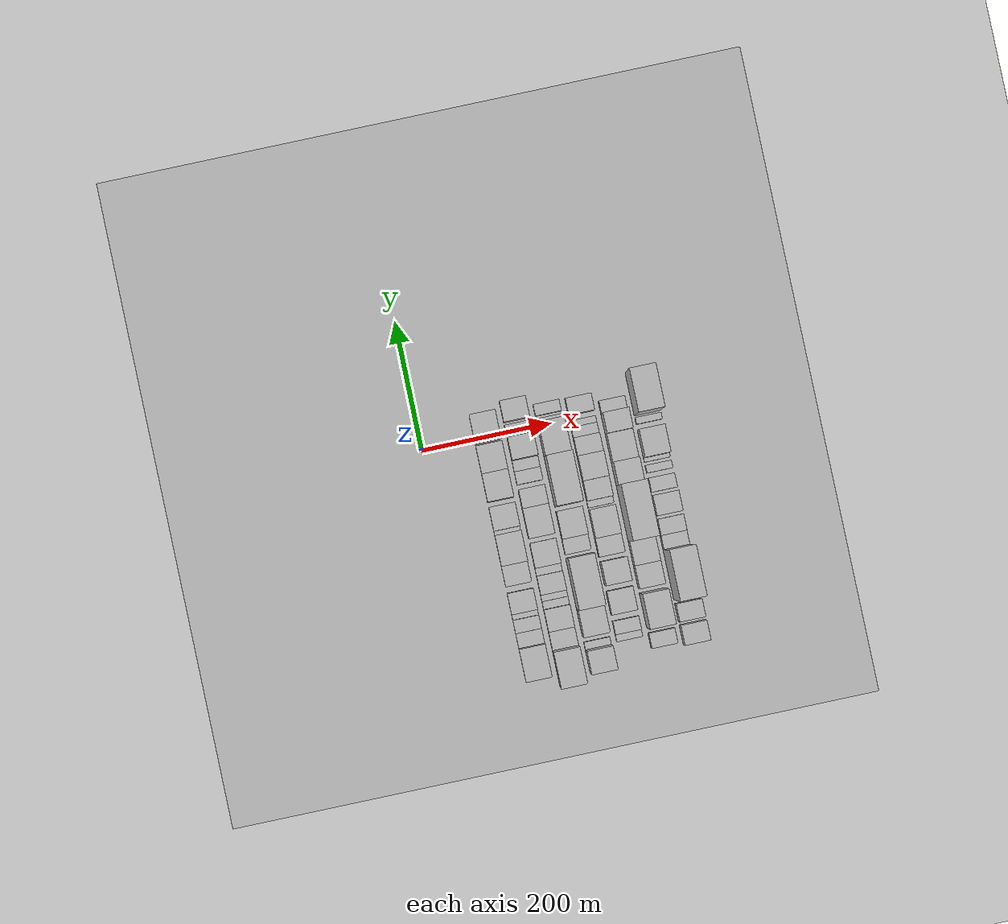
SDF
<sdf version="1.6">
 <world name="default">
  <include><name>ground_plane_1</name><uri>model://HANNAS_ground_plane</uri></include>
  <include>
   <name>ground_plane_2</name>
   <uri>model://HANNAS_ground_plane</uri>
   <pose>100 0 0  0 0 0</pose>
  </include>
  <model name="building_12">
   <static>1</static>
   <pose>100.0000 -347.9721 0 0.000000 0.000000 0.000000</pose>
   <link name="link">
    <pose>0 0 45.00 0 0 0</pose>
    <collision name="collision"><geometry><box><size>40.0000 50.4550 90.0000</size></box></geometry></collision>
    <visual name="visual">
     <cast_shadows>0</cast_shadows>
     <geometry><box><size>40.0000 50.4550 90.0000</size></box></geometry>
     <material>
      <script>
       <uri>model://HANNAS_wall/materials/scripts</uri>
       <uri>model://HANNAS_wall/materials/textures</uri>
       <name>vrc/HANNAS_wall</name>
      </script>
     </material>
    </visual>
   </link>
  </model>
  <model name="building_13">
   <static>1</static>
   <pose>100.0000 -311.3952 0 0.000000 0.000000 0.000000</pose>
   <link name="link">
    <pose>0 0 19.50 0 0 0</pose>
    <collision name="collision"><geometry><box><size>40.0000 22.6989 39.0000</size></box></geometry></collision>
    <visual name="visual">
     <cast_shadows>0</cast_shadows>
     <geometry><box><size>40.0000 22.6989 39.0000</size></box></geometry>
     <material>
      <script>
       <uri>model://HANNAS_wall/materials/scripts</uri>
       <uri>model://HANNAS_wall/materials/textures</uri>
       <name>vrc/HANNAS_wall</name>
      </script>
     </material>
    </visual>
   </link>
  </model>
  <model name="building_14">
   <static>1</static>
   <pose>100.0000 -289.8084 0 0.000000 0.000000 0.000000</pose>
   <link name="link">
    <pose>0 0 18.00 0 0 0</pose>
    <collision name="collision"><geometry><box><size>40.0000 20.4746 36.0000</size></box></geometry></collision>
    <visual name="visual">
     <cast_shadows>0</cast_shadows>
     <geometry><box><size>40.0000 20.4746 36.0000</size></box></geometry>
     <material>
      <script>
       <uri>model://HANNAS_wall/materials/scripts</uri>
       <uri>model://HANNAS_wall/materials/textures</uri>
       <name>vrc/HANNAS_wall</name>
      </script>
     </material>
    </visual>
   </link>
  </model>
  <model name="building_15">
   <static>1</static>
   <pose>100.0000 -275.0932 0 0.000000 0.000000 0.000000</pose>
   <link name="link">
    <pose>0 0 9.00 0 0 0</pose>
    <collision name="collision"><geometry><box><size>40.0000 8.9559 18.0000</size></box></geometry></collision>
    <visual name="visual">
     <cast_shadows>0</cast_shadows>
     <geometry><box><size>40.0000 8.9559 18.0000</size></box></geometry>
     <material>
      <script>
       <uri>model://HANNAS_wall/materials/scripts</uri>
       <uri>model://HANNAS_wall/materials/textures</uri>
       <name>vrc/HANNAS_wall</name>
      </script>
     </material>
    </visual>
   </link>
  </model>
  <model name="building_16">
   <static>1</static>
   <pose>100.0000 -254.2984 0 0.000000 0.000000 0.000000</pose>
   <link name="link">
    <pose>0 0 31.50 0 0 0</pose>
    <collision name="collision"><geometry><box><size>40.0000 32.6336 63.0000</size></box></geometry></collision>
    <visual name="visual">
     <cast_shadows>0</cast_shadows>
     <geometry><box><size>40.0000 32.6336 63.0000</size></box></geometry>
     <material>
      <script>
       <uri>model://HANNAS_wall/materials/scripts</uri>
       <uri>model://HANNAS_wall/materials/textures</uri>
       <name>vrc/HANNAS_wall</name>
      </script>
     </material>
    </visual>
   </link>
  </model>
  <model name="building_17">
   <static>1</static>
   <pose>100.0000 -211.9475 0 0.000000 0.000000 0.000000</pose>
   <link name="link">
    <pose>0 0 31.50 0 0 0</pose>
    <collision name="collision"><geometry><box><size>40.0000 32.0684 63.0000</size></box></geometry></collision>
    <visual name="visual">
     <cast_shadows>0</cast_shadows>
     <geometry><box><size>40.0000 32.0684 63.0000</size></box></geometry>
     <material>
      <script>
       <uri>model://HANNAS_wall/materials/scripts</uri>
       <uri>model://HANNAS_wall/materials/textures</uri>
       <name>vrc/HANNAS_wall</name>
      </script>
     </material>
    </visual>
   </link>
  </model>
  <model name="building_18">
   <static>1</static>
   <pose>100.0000 -172.4650 0 0.000000 0.000000 0.000000</pose>
   <link name="link">
    <pose>0 0 72.00 0 0 0</pose>
    <collision name="collision"><geometry><box><size>40.0000 46.8966 144.0000</size></box></geometry></collision>
    <visual name="visual">
     <cast_shadows>0</cast_shadows>
     <geometry><box><size>40.0000 46.8966 144.0000</size></box></geometry>
     <material>
      <script>
       <uri>model://HANNAS_wall/materials/scripts</uri>
       <uri>model://HANNAS_wall/materials/textures</uri>
       <name>vrc/HANNAS_wall</name>
      </script>
     </material>
    </visual>
   </link>
  </model>
  <model name="building_19">
   <static>1</static>
   <pose>100.0000 -145.7399 0 0.000000 0.000000 0.000000</pose>
   <link name="link">
    <pose>0 0 7.50 0 0 0</pose>
    <collision name="collision"><geometry><box><size>40.0000 6.5535 15.0000</size></box></geometry></collision>
    <visual name="visual">
     <cast_shadows>0</cast_shadows>
     <geometry><box><size>40.0000 6.5535 15.0000</size></box></geometry>
     <material>
      <script>
       <uri>model://HANNAS_wall/materials/scripts</uri>
       <uri>model://HANNAS_wall/materials/textures</uri>
       <name>vrc/HANNAS_wall</name>
      </script>
     </material>
    </visual>
   </link>
  </model>
  <model name="building_20">
   <static>1</static>
   <pose>100.0000 -124.3125 0 0.000000 0.000000 0.000000</pose>
   <link name="link">
    <pose>0 0 57.00 0 0 0</pose>
    <collision name="collision"><geometry><box><size>40.0000 36.3013 114.0000</size></box></geometry></collision>
    <visual name="visual">
     <cast_shadows>0</cast_shadows>
     <geometry><box><size>40.0000 36.3013 114.0000</size></box></geometry>
     <material>
      <script>
       <uri>model://HANNAS_wall/materials/scripts</uri>
       <uri>model://HANNAS_wall/materials/textures</uri>
       <name>vrc/HANNAS_wall</name>
      </script>
     </material>
    </visual>
   </link>
  </model>
  <model name="building_21">
   <static>1</static>
   <pose>100.0000 -76.8169 0 0.000000 0.000000 0.000000</pose>
   <link name="link">
    <pose>0 0 61.50 0 0 0</pose>
    <collision name="collision"><geometry><box><size>40.0000 42.6899 123.0000</size></box></geometry></collision>
    <visual name="visual">
     <cast_shadows>0</cast_shadows>
     <geometry><box><size>40.0000 42.6899 123.0000</size></box></geometry>
     <material>
      <script>
       <uri>model://HANNAS_wall/materials/scripts</uri>
       <uri>model://HANNAS_wall/materials/textures</uri>
       <name>vrc/HANNAS_wall</name>
      </script>
     </material>
    </visual>
   </link>
  </model>
  <model name="building_22">
   <static>1</static>
   <pose>100.0000 -34.0870 0 0.000000 0.000000 0.000000</pose>
   <link name="link">
    <pose>0 0 60.00 0 0 0</pose>
    <collision name="collision"><geometry><box><size>40.0000 42.7698 120.0000</size></box></geometry></collision>
    <visual name="visual">
     <cast_shadows>0</cast_shadows>
     <geometry><box><size>40.0000 42.7698 120.0000</size></box></geometry>
     <material>
      <script>
       <uri>model://HANNAS_wall/materials/scripts</uri>
       <uri>model://HANNAS_wall/materials/textures</uri>
       <name>vrc/HANNAS_wall</name>
      </script>
     </material>
    </visual>
   </link>
  </model>
  <model name="building_23">
   <static>1</static>
   <pose>100.0000 13.6109 0 0.000000 0.000000 0.000000</pose>
   <link name="link">
    <pose>0 0 43.50 0 0 0</pose>
    <collision name="collision"><geometry><box><size>40.0000 44.6261 87.0000</size></box></geometry></collision>
    <visual name="visual">
     <cast_shadows>0</cast_shadows>
     <geometry><box><size>40.0000 44.6261 87.0000</size></box></geometry>
     <material>
      <script>
       <uri>model://HANNAS_wall/materials/scripts</uri>
       <uri>model://HANNAS_wall/materials/textures</uri>
       <name>vrc/HANNAS_wall</name>
      </script>
     </material>
    </visual>
   </link>
  </model>
  <model name="building_58">
   <static>1</static>
   <pose>149.0000 -364.0391 0 0.000000 0.000000 0.000000</pose>
   <link name="link">
    <pose>0 0 72.00 0 0 0</pose>
    <collision name="collision"><geometry><box><size>40.0000 55.9074 144.0000</size></box></geometry></collision>
    <visual name="visual">
     <cast_shadows>0</cast_shadows>
     <geometry><box><size>40.0000 55.9074 144.0000</size></box></geometry>
     <material>
      <script>
       <uri>model://HANNAS_wall/materials/scripts</uri>
       <uri>model://HANNAS_wall/materials/textures</uri>
       <name>vrc/HANNAS_wall</name>
      </script>
     </material>
    </visual>
   </link>
  </model>
  <model name="building_59">
   <static>1</static>
   <pose>149.0000 -321.9731 0 0.000000 0.000000 0.000000</pose>
   <link name="link">
    <pose>0 0 25.50 0 0 0</pose>
    <collision name="collision"><geometry><box><size>40.0000 28.2246 51.0000</size></box></geometry></collision>
    <visual name="visual">
     <cast_shadows>0</cast_shadows>
     <geometry><box><size>40.0000 28.2246 51.0000</size></box></geometry>
     <material>
      <script>
       <uri>model://HANNAS_wall/materials/scripts</uri>
       <uri>model://HANNAS_wall/materials/textures</uri>
       <name>vrc/HANNAS_wall</name>
      </script>
     </material>
    </visual>
   </link>
  </model>
  <model name="building_60">
   <static>1</static>
   <pose>149.0000 -290.6808 0 0.000000 0.000000 0.000000</pose>
   <link name="link">
    <pose>0 0 30.00 0 0 0</pose>
    <collision name="collision"><geometry><box><size>40.0000 34.3600 60.0000</size></box></geometry></collision>
    <visual name="visual">
     <cast_shadows>0</cast_shadows>
     <geometry><box><size>40.0000 34.3600 60.0000</size></box></geometry>
     <material>
      <script>
       <uri>model://HANNAS_wall/materials/scripts</uri>
       <uri>model://HANNAS_wall/materials/textures</uri>
       <name>vrc/HANNAS_wall</name>
      </script>
     </material>
    </visual>
   </link>
  </model>
  <model name="building_61">
   <static>1</static>
   <pose>149.0000 -267.4533 0 0.000000 0.000000 0.000000</pose>
   <link name="link">
    <pose>0 0 13.50 0 0 0</pose>
    <collision name="collision"><geometry><box><size>40.0000 12.0950 27.0000</size></box></geometry></collision>
    <visual name="visual">
     <cast_shadows>0</cast_shadows>
     <geometry><box><size>40.0000 12.0950 27.0000</size></box></geometry>
     <material>
      <script>
       <uri>model://HANNAS_wall/materials/scripts</uri>
       <uri>model://HANNAS_wall/materials/textures</uri>
       <name>vrc/HANNAS_wall</name>
      </script>
     </material>
    </visual>
   </link>
  </model>
  <model name="building_62">
   <static>1</static>
   <pose>149.0000 -256.3342 0 0.000000 0.000000 0.000000</pose>
   <link name="link">
    <pose>0 0 10.50 0 0 0</pose>
    <collision name="collision"><geometry><box><size>40.0000 10.1433 21.0000</size></box></geometry></collision>
    <visual name="visual">
     <cast_shadows>0</cast_shadows>
     <geometry><box><size>40.0000 10.1433 21.0000</size></box></geometry>
     <material>
      <script>
       <uri>model://HANNAS_wall/materials/scripts</uri>
       <uri>model://HANNAS_wall/materials/textures</uri>
       <name>vrc/HANNAS_wall</name>
      </script>
     </material>
    </visual>
   </link>
  </model>
  <model name="building_63">
   <static>1</static>
   <pose>149.0000 -236.6102 0 0.000000 0.000000 0.000000</pose>
   <link name="link">
    <pose>0 0 25.50 0 0 0</pose>
    <collision name="collision"><geometry><box><size>40.0000 29.3045 51.0000</size></box></geometry></collision>
    <visual name="visual">
     <cast_shadows>0</cast_shadows>
     <geometry><box><size>40.0000 29.3045 51.0000</size></box></geometry>
     <material>
      <script>
       <uri>model://HANNAS_wall/materials/scripts</uri>
       <uri>model://HANNAS_wall/materials/textures</uri>
       <name>vrc/HANNAS_wall</name>
      </script>
     </material>
    </visual>
   </link>
  </model>
  <model name="building_64">
   <static>1</static>
   <pose>149.0000 -215.8485 0 0.000000 0.000000 0.000000</pose>
   <link name="link">
    <pose>0 0 13.50 0 0 0</pose>
    <collision name="collision"><geometry><box><size>40.0000 12.2190 27.0000</size></box></geometry></collision>
    <visual name="visual">
     <cast_shadows>0</cast_shadows>
     <geometry><box><size>40.0000 12.2190 27.0000</size></box></geometry>
     <material>
      <script>
       <uri>model://HANNAS_wall/materials/scripts</uri>
       <uri>model://HANNAS_wall/materials/textures</uri>
       <name>vrc/HANNAS_wall</name>
      </script>
     </material>
    </visual>
   </link>
  </model>
  <model name="building_65">
   <static>1</static>
   <pose>149.0000 -190.5972 0 0.000000 0.000000 0.000000</pose>
   <link name="link">
    <pose>0 0 36.00 0 0 0</pose>
    <collision name="collision"><geometry><box><size>40.0000 38.2836 72.0000</size></box></geometry></collision>
    <visual name="visual">
     <cast_shadows>0</cast_shadows>
     <geometry><box><size>40.0000 38.2836 72.0000</size></box></geometry>
     <material>
      <script>
       <uri>model://HANNAS_wall/materials/scripts</uri>
       <uri>model://HANNAS_wall/materials/textures</uri>
       <name>vrc/HANNAS_wall</name>
      </script>
     </material>
    </visual>
   </link>
  </model>
  <model name="building_66">
   <static>1</static>
   <pose>149.0000 -141.4421 0 0.000000 0.000000 0.000000</pose>
   <link name="link">
    <pose>0 0 45.00 0 0 0</pose>
    <collision name="collision"><geometry><box><size>40.0000 46.0265 90.0000</size></box></geometry></collision>
    <visual name="visual">
     <cast_shadows>0</cast_shadows>
     <geometry><box><size>40.0000 46.0265 90.0000</size></box></geometry>
     <material>
      <script>
       <uri>model://HANNAS_wall/materials/scripts</uri>
       <uri>model://HANNAS_wall/materials/textures</uri>
       <name>vrc/HANNAS_wall</name>
      </script>
     </material>
    </visual>
   </link>
  </model>
  <model name="building_67">
   <static>1</static>
   <pose>149.0000 -103.8983 0 0.000000 0.000000 0.000000</pose>
   <link name="link">
    <pose>0 0 46.50 0 0 0</pose>
    <collision name="collision"><geometry><box><size>40.0000 29.0612 93.0000</size></box></geometry></collision>
    <visual name="visual">
     <cast_shadows>0</cast_shadows>
     <geometry><box><size>40.0000 29.0612 93.0000</size></box></geometry>
     <material>
      <script>
       <uri>model://HANNAS_wall/materials/scripts</uri>
       <uri>model://HANNAS_wall/materials/textures</uri>
       <name>vrc/HANNAS_wall</name>
      </script>
     </material>
    </visual>
   </link>
  </model>
  <model name="building_68">
   <static>1</static>
   <pose>149.0000 -71.3239 0 0.000000 0.000000 0.000000</pose>
   <link name="link">
    <pose>0 0 18.00 0 0 0</pose>
    <collision name="collision"><geometry><box><size>40.0000 20.0875 36.0000</size></box></geometry></collision>
    <visual name="visual">
     <cast_shadows>0</cast_shadows>
     <geometry><box><size>40.0000 20.0875 36.0000</size></box></geometry>
     <material>
      <script>
       <uri>model://HANNAS_wall/materials/scripts</uri>
       <uri>model://HANNAS_wall/materials/textures</uri>
       <name>vrc/HANNAS_wall</name>
      </script>
     </material>
    </visual>
   </link>
  </model>
  <model name="building_69">
   <static>1</static>
   <pose>149.0000 -52.8301 0 0.000000 0.000000 0.000000</pose>
   <link name="link">
    <pose>0 0 15.00 0 0 0</pose>
    <collision name="collision"><geometry><box><size>40.0000 16.9000 30.0000</size></box></geometry></collision>
    <visual name="visual">
     <cast_shadows>0</cast_shadows>
     <geometry><box><size>40.0000 16.9000 30.0000</size></box></geometry>
     <material>
      <script>
       <uri>model://HANNAS_wall/materials/scripts</uri>
       <uri>model://HANNAS_wall/materials/textures</uri>
       <name>vrc/HANNAS_wall</name>
      </script>
     </material>
    </visual>
   </link>
  </model>
  <model name="building_70">
   <static>1</static>
   <pose>149.0000 -26.7910 0 0.000000 0.000000 0.000000</pose>
   <link name="link">
    <pose>0 0 49.50 0 0 0</pose>
    <collision name="collision"><geometry><box><size>40.0000 35.1782 99.0000</size></box></geometry></collision>
    <visual name="visual">
     <cast_shadows>0</cast_shadows>
     <geometry><box><size>40.0000 35.1782 99.0000</size></box></geometry>
     <material>
      <script>
       <uri>model://HANNAS_wall/materials/scripts</uri>
       <uri>model://HANNAS_wall/materials/textures</uri>
       <name>vrc/HANNAS_wall</name>
      </script>
     </material>
    </visual>
   </link>
  </model>
  <model name="building_71">
   <static>1</static>
   <pose>149.0000 2.3673 0 0.000000 0.000000 0.000000</pose>
   <link name="link">
    <pose>0 0 16.50 0 0 0</pose>
    <collision name="collision"><geometry><box><size>40.0000 17.1384 33.0000</size></box></geometry></collision>
    <visual name="visual">
     <cast_shadows>0</cast_shadows>
     <geometry><box><size>40.0000 17.1384 33.0000</size></box></geometry>
     <material>
      <script>
       <uri>model://HANNAS_wall/materials/scripts</uri>
       <uri>model://HANNAS_wall/materials/textures</uri>
       <name>vrc/HANNAS_wall</name>
      </script>
     </material>
    </visual>
   </link>
  </model>
  <model name="building_72">
   <static>1</static>
   <pose>149.0000 31.3032 0 0.000000 0.000000 0.000000</pose>
   <link name="link">
    <pose>0 0 28.50 0 0 0</pose>
    <collision name="collision"><geometry><box><size>40.0000 32.7333 57.0000</size></box></geometry></collision>
    <visual name="visual">
     <cast_shadows>0</cast_shadows>
     <geometry><box><size>40.0000 32.7333 57.0000</size></box></geometry>
     <material>
      <script>
       <uri>model://HANNAS_wall/materials/scripts</uri>
       <uri>model://HANNAS_wall/materials/textures</uri>
       <name>vrc/HANNAS_wall</name>
      </script>
     </material>
    </visual>
   </link>
  </model>
  <model name="building_109">
   <static>1</static>
   <pose>198.0000 -363.7732 0 0.000000 0.000000 0.000000</pose>
   <link name="link">
    <pose>0 0 58.50 0 0 0</pose>
    <collision name="collision"><geometry><box><size>40.0000 35.7981 117.0000</size></box></geometry></collision>
    <visual name="visual">
     <cast_shadows>0</cast_shadows>
     <geometry><box><size>40.0000 35.7981 117.0000</size></box></geometry>
     <material>
      <script>
       <uri>model://HANNAS_wall/materials/scripts</uri>
       <uri>model://HANNAS_wall/materials/textures</uri>
       <name>vrc/HANNAS_wall</name>
      </script>
     </material>
    </visual>
   </link>
  </model>
  <model name="building_110">
   <static>1</static>
   <pose>198.0000 -340.1006 0 0.000000 0.000000 0.000000</pose>
   <link name="link">
    <pose>0 0 13.50 0 0 0</pose>
    <collision name="collision"><geometry><box><size>40.0000 11.5471 27.0000</size></box></geometry></collision>
    <visual name="visual">
     <cast_shadows>0</cast_shadows>
     <geometry><box><size>40.0000 11.5471 27.0000</size></box></geometry>
     <material>
      <script>
       <uri>model://HANNAS_wall/materials/scripts</uri>
       <uri>model://HANNAS_wall/materials/textures</uri>
       <name>vrc/HANNAS_wall</name>
      </script>
     </material>
    </visual>
   </link>
  </model>
  <model name="building_111">
   <static>1</static>
   <pose>198.0000 -303.9084 0 0.000000 0.000000 0.000000</pose>
   <link name="link">
    <pose>0 0 60.00 0 0 0</pose>
    <collision name="collision"><geometry><box><size>40.0000 42.8373 120.0000</size></box></geometry></collision>
    <visual name="visual">
     <cast_shadows>0</cast_shadows>
     <geometry><box><size>40.0000 42.8373 120.0000</size></box></geometry>
     <material>
      <script>
       <uri>model://HANNAS_wall/materials/scripts</uri>
       <uri>model://HANNAS_wall/materials/textures</uri>
       <name>vrc/HANNAS_wall</name>
      </script>
     </material>
    </visual>
   </link>
  </model>
  <model name="building_112">
   <static>1</static>
   <pose>198.0000 -243.5126 0 0.000000 0.000000 0.000000</pose>
   <link name="link">
    <pose>0 0 103.50 0 0 0</pose>
    <collision name="collision"><geometry><box><size>40.0000 77.9543 207.0000</size></box></geometry></collision>
    <visual name="visual">
     <cast_shadows>0</cast_shadows>
     <geometry><box><size>40.0000 77.9543 207.0000</size></box></geometry>
     <material>
      <script>
       <uri>model://HANNAS_wall/materials/scripts</uri>
       <uri>model://HANNAS_wall/materials/textures</uri>
       <name>vrc/HANNAS_wall</name>
      </script>
     </material>
    </visual>
   </link>
  </model>
  <model name="building_113">
   <static>1</static>
   <pose>198.0000 -187.6084 0 0.000000 0.000000 0.000000</pose>
   <link name="link">
    <pose>0 0 21.00 0 0 0</pose>
    <collision name="collision"><geometry><box><size>40.0000 23.8540 42.0000</size></box></geometry></collision>
    <visual name="visual">
     <cast_shadows>0</cast_shadows>
     <geometry><box><size>40.0000 23.8540 42.0000</size></box></geometry>
     <material>
      <script>
       <uri>model://HANNAS_wall/materials/scripts</uri>
       <uri>model://HANNAS_wall/materials/textures</uri>
       <name>vrc/HANNAS_wall</name>
      </script>
     </material>
    </visual>
   </link>
  </model>
  <model name="building_114">
   <static>1</static>
   <pose>198.0000 -154.2900 0 0.000000 0.000000 0.000000</pose>
   <link name="link">
    <pose>0 0 36.00 0 0 0</pose>
    <collision name="collision"><geometry><box><size>40.0000 42.7830 72.0000</size></box></geometry></collision>
    <visual name="visual">
     <cast_shadows>0</cast_shadows>
     <geometry><box><size>40.0000 42.7830 72.0000</size></box></geometry>
     <material>
      <script>
       <uri>model://HANNAS_wall/materials/scripts</uri>
       <uri>model://HANNAS_wall/materials/textures</uri>
       <name>vrc/HANNAS_wall</name>
      </script>
     </material>
    </visual>
   </link>
  </model>
  <model name="building_115">
   <static>1</static>
   <pose>198.0000 -87.7830 0 0.000000 0.000000 0.000000</pose>
   <link name="link">
    <pose>0 0 100.50 0 0 0</pose>
    <collision name="collision"><geometry><box><size>40.0000 76.2309 201.0000</size></box></geometry></collision>
    <visual name="visual">
     <cast_shadows>0</cast_shadows>
     <geometry><box><size>40.0000 76.2309 201.0000</size></box></geometry>
     <material>
      <script>
       <uri>model://HANNAS_wall/materials/scripts</uri>
       <uri>model://HANNAS_wall/materials/textures</uri>
       <name>vrc/HANNAS_wall</name>
      </script>
     </material>
    </visual>
   </link>
  </model>
  <model name="building_116">
   <static>1</static>
   <pose>198.0000 -23.4473 0 0.000000 0.000000 0.000000</pose>
   <link name="link">
    <pose>0 0 73.50 0 0 0</pose>
    <collision name="collision"><geometry><box><size>40.0000 52.4405 147.0000</size></box></geometry></collision>
    <visual name="visual">
     <cast_shadows>0</cast_shadows>
     <geometry><box><size>40.0000 52.4405 147.0000</size></box></geometry>
     <material>
      <script>
       <uri>model://HANNAS_wall/materials/scripts</uri>
       <uri>model://HANNAS_wall/materials/textures</uri>
       <name>vrc/HANNAS_wall</name>
      </script>
     </material>
    </visual>
   </link>
  </model>
  <model name="building_117">
   <static>1</static>
   <pose>198.0000 6.7192 0 0.000000 0.000000 0.000000</pose>
   <link name="link">
    <pose>0 0 9.00 0 0 0</pose>
    <collision name="collision"><geometry><box><size>40.0000 7.8926 18.0000</size></box></geometry></collision>
    <visual name="visual">
     <cast_shadows>0</cast_shadows>
     <geometry><box><size>40.0000 7.8926 18.0000</size></box></geometry>
     <material>
      <script>
       <uri>model://HANNAS_wall/materials/scripts</uri>
       <uri>model://HANNAS_wall/materials/textures</uri>
       <name>vrc/HANNAS_wall</name>
      </script>
     </material>
    </visual>
   </link>
  </model>
  <model name="building_118">
   <static>1</static>
   <pose>198.0000 23.5668 0 0.000000 0.000000 0.000000</pose>
   <link name="link">
    <pose>0 0 15.00 0 0 0</pose>
    <collision name="collision"><geometry><box><size>40.0000 17.8024 30.0000</size></box></geometry></collision>
    <visual name="visual">
     <cast_shadows>0</cast_shadows>
     <geometry><box><size>40.0000 17.8024 30.0000</size></box></geometry>
     <material>
      <script>
       <uri>model://HANNAS_wall/materials/scripts</uri>
       <uri>model://HANNAS_wall/materials/textures</uri>
       <name>vrc/HANNAS_wall</name>
      </script>
     </material>
    </visual>
   </link>
  </model>
  <model name="building_157">
   <static>1</static>
   <pose>247.0000 -338.6360 0 0.000000 0.000000 0.000000</pose>
   <link name="link">
    <pose>0 0 12.00 0 0 0</pose>
    <collision name="collision"><geometry><box><size>40.0000 11.1416 24.0000</size></box></geometry></collision>
    <visual name="visual">
     <cast_shadows>0</cast_shadows>
     <geometry><box><size>40.0000 11.1416 24.0000</size></box></geometry>
     <material>
      <script>
       <uri>model://HANNAS_wall/materials/scripts</uri>
       <uri>model://HANNAS_wall/materials/textures</uri>
       <name>vrc/HANNAS_wall</name>
      </script>
     </material>
    </visual>
   </link>
  </model>
  <model name="building_158">
   <static>1</static>
   <pose>247.0000 -322.7401 0 0.000000 0.000000 0.000000</pose>
   <link name="link">
    <pose>0 0 18.00 0 0 0</pose>
    <collision name="collision"><geometry><box><size>40.0000 20.6501 36.0000</size></box></geometry></collision>
    <visual name="visual">
     <cast_shadows>0</cast_shadows>
     <geometry><box><size>40.0000 20.6501 36.0000</size></box></geometry>
     <material>
      <script>
       <uri>model://HANNAS_wall/materials/scripts</uri>
       <uri>model://HANNAS_wall/materials/textures</uri>
       <name>vrc/HANNAS_wall</name>
      </script>
     </material>
    </visual>
   </link>
  </model>
  <model name="building_159">
   <static>1</static>
   <pose>247.0000 -284.2731 0 0.000000 0.000000 0.000000</pose>
   <link name="link">
    <pose>0 0 31.50 0 0 0</pose>
    <collision name="collision"><geometry><box><size>40.0000 36.2840 63.0000</size></box></geometry></collision>
    <visual name="visual">
     <cast_shadows>0</cast_shadows>
     <geometry><box><size>40.0000 36.2840 63.0000</size></box></geometry>
     <material>
      <script>
       <uri>model://HANNAS_wall/materials/scripts</uri>
       <uri>model://HANNAS_wall/materials/textures</uri>
       <name>vrc/HANNAS_wall</name>
      </script>
     </material>
    </visual>
   </link>
  </model>
  <model name="building_160">
   <static>1</static>
   <pose>247.0000 -238.8391 0 0.000000 0.000000 0.000000</pose>
   <link name="link">
    <pose>0 0 48.00 0 0 0</pose>
    <collision name="collision"><geometry><box><size>40.0000 36.5839 96.0000</size></box></geometry></collision>
    <visual name="visual">
     <cast_shadows>0</cast_shadows>
     <geometry><box><size>40.0000 36.5839 96.0000</size></box></geometry>
     <material>
      <script>
       <uri>model://HANNAS_wall/materials/scripts</uri>
       <uri>model://HANNAS_wall/materials/textures</uri>
       <name>vrc/HANNAS_wall</name>
      </script>
     </material>
    </visual>
   </link>
  </model>
  <model name="building_161">
   <static>1</static>
   <pose>247.0000 -199.1665 0 0.000000 0.000000 0.000000</pose>
   <link name="link">
    <pose>0 0 28.50 0 0 0</pose>
    <collision name="collision"><geometry><box><size>40.0000 28.7612 57.0000</size></box></geometry></collision>
    <visual name="visual">
     <cast_shadows>0</cast_shadows>
     <geometry><box><size>40.0000 28.7612 57.0000</size></box></geometry>
     <material>
      <script>
       <uri>model://HANNAS_wall/materials/scripts</uri>
       <uri>model://HANNAS_wall/materials/textures</uri>
       <name>vrc/HANNAS_wall</name>
      </script>
     </material>
    </visual>
   </link>
  </model>
  <model name="building_162">
   <static>1</static>
   <pose>247.0000 -162.8243 0 0.000000 0.000000 0.000000</pose>
   <link name="link">
    <pose>0 0 37.50 0 0 0</pose>
    <collision name="collision"><geometry><box><size>40.0000 43.9233 75.0000</size></box></geometry></collision>
    <visual name="visual">
     <cast_shadows>0</cast_shadows>
     <geometry><box><size>40.0000 43.9233 75.0000</size></box></geometry>
     <material>
      <script>
       <uri>model://HANNAS_wall/materials/scripts</uri>
       <uri>model://HANNAS_wall/materials/textures</uri>
       <name>vrc/HANNAS_wall</name>
      </script>
     </material>
    </visual>
   </link>
  </model>
  <model name="building_163">
   <static>1</static>
   <pose>247.0000 -132.6168 0 0.000000 0.000000 0.000000</pose>
   <link name="link">
    <pose>0 0 12.00 0 0 0</pose>
    <collision name="collision"><geometry><box><size>40.0000 10.4918 24.0000</size></box></geometry></collision>
    <visual name="visual">
     <cast_shadows>0</cast_shadows>
     <geometry><box><size>40.0000 10.4918 24.0000</size></box></geometry>
     <material>
      <script>
       <uri>model://HANNAS_wall/materials/scripts</uri>
       <uri>model://HANNAS_wall/materials/textures</uri>
       <name>vrc/HANNAS_wall</name>
      </script>
     </material>
    </visual>
   </link>
  </model>
  <model name="building_164">
   <static>1</static>
   <pose>247.0000 -112.0146 0 0.000000 0.000000 0.000000</pose>
   <link name="link">
    <pose>0 0 30.00 0 0 0</pose>
    <collision name="collision"><geometry><box><size>40.0000 30.7127 60.0000</size></box></geometry></collision>
    <visual name="visual">
     <cast_shadows>0</cast_shadows>
     <geometry><box><size>40.0000 30.7127 60.0000</size></box></geometry>
     <material>
      <script>
       <uri>model://HANNAS_wall/materials/scripts</uri>
       <uri>model://HANNAS_wall/materials/textures</uri>
       <name>vrc/HANNAS_wall</name>
      </script>
     </material>
    </visual>
   </link>
  </model>
  <model name="building_165">
   <static>1</static>
   <pose>247.0000 -77.4138 0 0.000000 0.000000 0.000000</pose>
   <link name="link">
    <pose>0 0 34.50 0 0 0</pose>
    <collision name="collision"><geometry><box><size>40.0000 38.4888 69.0000</size></box></geometry></collision>
    <visual name="visual">
     <cast_shadows>0</cast_shadows>
     <geometry><box><size>40.0000 38.4888 69.0000</size></box></geometry>
     <material>
      <script>
       <uri>model://HANNAS_wall/materials/scripts</uri>
       <uri>model://HANNAS_wall/materials/textures</uri>
       <name>vrc/HANNAS_wall</name>
      </script>
     </material>
    </visual>
   </link>
  </model>
  <model name="building_166">
   <static>1</static>
   <pose>247.0000 -44.0517 0 0.000000 0.000000 0.000000</pose>
   <link name="link">
    <pose>0 0 25.50 0 0 0</pose>
    <collision name="collision"><geometry><box><size>40.0000 28.2353 51.0000</size></box></geometry></collision>
    <visual name="visual">
     <cast_shadows>0</cast_shadows>
     <geometry><box><size>40.0000 28.2353 51.0000</size></box></geometry>
     <material>
      <script>
       <uri>model://HANNAS_wall/materials/scripts</uri>
       <uri>model://HANNAS_wall/materials/textures</uri>
       <name>vrc/HANNAS_wall</name>
      </script>
     </material>
    </visual>
   </link>
  </model>
  <model name="building_167">
   <static>1</static>
   <pose>247.0000 -21.7228 0 0.000000 0.000000 0.000000</pose>
   <link name="link">
    <pose>0 0 15.00 0 0 0</pose>
    <collision name="collision"><geometry><box><size>40.0000 16.4226 30.0000</size></box></geometry></collision>
    <visual name="visual">
     <cast_shadows>0</cast_shadows>
     <geometry><box><size>40.0000 16.4226 30.0000</size></box></geometry>
     <material>
      <script>
       <uri>model://HANNAS_wall/materials/scripts</uri>
       <uri>model://HANNAS_wall/materials/textures</uri>
       <name>vrc/HANNAS_wall</name>
      </script>
     </material>
    </visual>
   </link>
  </model>
  <model name="building_168">
   <static>1</static>
   <pose>247.0000 -8.2928 0 0.000000 0.000000 0.000000</pose>
   <link name="link">
    <pose>0 0 10.50 0 0 0</pose>
    <collision name="collision"><geometry><box><size>40.0000 10.4375 21.0000</size></box></geometry></collision>
    <visual name="visual">
     <cast_shadows>0</cast_shadows>
     <geometry><box><size>40.0000 10.4375 21.0000</size></box></geometry>
     <material>
      <script>
       <uri>model://HANNAS_wall/materials/scripts</uri>
       <uri>model://HANNAS_wall/materials/textures</uri>
       <name>vrc/HANNAS_wall</name>
      </script>
     </material>
    </visual>
   </link>
  </model>
  <model name="building_169">
   <static>1</static>
   <pose>247.0000 17.9973 0 0.000000 0.000000 0.000000</pose>
   <link name="link">
    <pose>0 0 24.00 0 0 0</pose>
    <collision name="collision"><geometry><box><size>40.0000 26.1427 48.0000</size></box></geometry></collision>
    <visual name="visual">
     <cast_shadows>0</cast_shadows>
     <geometry><box><size>40.0000 26.1427 48.0000</size></box></geometry>
     <material>
      <script>
       <uri>model://HANNAS_wall/materials/scripts</uri>
       <uri>model://HANNAS_wall/materials/textures</uri>
       <name>vrc/HANNAS_wall</name>
      </script>
     </material>
    </visual>
   </link>
  </model>
  <model name="building_207">
   <static>1</static>
   <pose>296.0000 -352.7859 0 0.000000 0.000000 0.000000</pose>
   <link name="link">
    <pose>0 0 22.50 0 0 0</pose>
    <collision name="collision"><geometry><box><size>40.0000 23.4201 45.0000</size></box></geometry></collision>
    <visual name="visual">
     <cast_shadows>0</cast_shadows>
     <geometry><box><size>40.0000 23.4201 45.0000</size></box></geometry>
     <material>
      <script>
       <uri>model://HANNAS_wall/materials/scripts</uri>
       <uri>model://HANNAS_wall/materials/textures</uri>
       <name>vrc/HANNAS_wall</name>
      </script>
     </material>
    </visual>
   </link>
  </model>
  <model name="building_208">
   <static>1</static>
   <pose>296.0000 -306.3498 0 0.000000 0.000000 0.000000</pose>
   <link name="link">
    <pose>0 0 70.50 0 0 0</pose>
    <collision name="collision"><geometry><box><size>40.0000 53.4521 141.0000</size></box></geometry></collision>
    <visual name="visual">
     <cast_shadows>0</cast_shadows>
     <geometry><box><size>40.0000 53.4521 141.0000</size></box></geometry>
     <material>
      <script>
       <uri>model://HANNAS_wall/materials/scripts</uri>
       <uri>model://HANNAS_wall/materials/textures</uri>
       <name>vrc/HANNAS_wall</name>
      </script>
     </material>
    </visual>
   </link>
  </model>
  <model name="building_209">
   <static>1</static>
   <pose>296.0000 -254.9866 0 0.000000 0.000000 0.000000</pose>
   <link name="link">
    <pose>0 0 34.50 0 0 0</pose>
    <collision name="collision"><geometry><box><size>40.0000 35.2744 69.0000</size></box></geometry></collision>
    <visual name="visual">
     <cast_shadows>0</cast_shadows>
     <geometry><box><size>40.0000 35.2744 69.0000</size></box></geometry>
     <material>
      <script>
       <uri>model://HANNAS_wall/materials/scripts</uri>
       <uri>model://HANNAS_wall/materials/textures</uri>
       <name>vrc/HANNAS_wall</name>
      </script>
     </material>
    </visual>
   </link>
  </model>
  <model name="building_210">
   <static>1</static>
   <pose>296.0000 -218.3289 0 0.000000 0.000000 0.000000</pose>
   <link name="link">
    <pose>0 0 33.00 0 0 0</pose>
    <collision name="collision"><geometry><box><size>40.0000 38.0408 66.0000</size></box></geometry></collision>
    <visual name="visual">
     <cast_shadows>0</cast_shadows>
     <geometry><box><size>40.0000 38.0408 66.0000</size></box></geometry>
     <material>
      <script>
       <uri>model://HANNAS_wall/materials/scripts</uri>
       <uri>model://HANNAS_wall/materials/textures</uri>
       <name>vrc/HANNAS_wall</name>
      </script>
     </material>
    </visual>
   </link>
  </model>
  <model name="building_211">
   <static>1</static>
   <pose>296.0000 -156.8029 0 0.000000 0.000000 0.000000</pose>
   <link name="link">
    <pose>0 0 111.00 0 0 0</pose>
    <collision name="collision"><geometry><box><size>40.0000 85.0112 222.0000</size></box></geometry></collision>
    <visual name="visual">
     <cast_shadows>0</cast_shadows>
     <geometry><box><size>40.0000 85.0112 222.0000</size></box></geometry>
     <material>
      <script>
       <uri>model://HANNAS_wall/materials/scripts</uri>
       <uri>model://HANNAS_wall/materials/textures</uri>
       <name>vrc/HANNAS_wall</name>
      </script>
     </material>
    </visual>
   </link>
  </model>
  <model name="building_212">
   <static>1</static>
   <pose>296.0000 -96.5369 0 0.000000 0.000000 0.000000</pose>
   <link name="link">
    <pose>0 0 54.00 0 0 0</pose>
    <collision name="collision"><geometry><box><size>40.0000 35.5207 108.0000</size></box></geometry></collision>
    <visual name="visual">
     <cast_shadows>0</cast_shadows>
     <geometry><box><size>40.0000 35.5207 108.0000</size></box></geometry>
     <material>
      <script>
       <uri>model://HANNAS_wall/materials/scripts</uri>
       <uri>model://HANNAS_wall/materials/textures</uri>
       <name>vrc/HANNAS_wall</name>
      </script>
     </material>
    </visual>
   </link>
  </model>
  <model name="building_213">
   <static>1</static>
   <pose>296.0000 -56.7669 0 0.000000 0.000000 0.000000</pose>
   <link name="link">
    <pose>0 0 39.00 0 0 0</pose>
    <collision name="collision"><geometry><box><size>40.0000 44.0193 78.0000</size></box></geometry></collision>
    <visual name="visual">
     <cast_shadows>0</cast_shadows>
     <geometry><box><size>40.0000 44.0193 78.0000</size></box></geometry>
     <material>
      <script>
       <uri>model://HANNAS_wall/materials/scripts</uri>
       <uri>model://HANNAS_wall/materials/textures</uri>
       <name>vrc/HANNAS_wall</name>
      </script>
     </material>
    </visual>
   </link>
  </model>
  <model name="building_214">
   <static>1</static>
   <pose>296.0000 -18.9847 0 0.000000 0.000000 0.000000</pose>
   <link name="link">
    <pose>0 0 51.00 0 0 0</pose>
    <collision name="collision"><geometry><box><size>40.0000 31.5451 102.0000</size></box></geometry></collision>
    <visual name="visual">
     <cast_shadows>0</cast_shadows>
     <geometry><box><size>40.0000 31.5451 102.0000</size></box></geometry>
     <material>
      <script>
       <uri>model://HANNAS_wall/materials/scripts</uri>
       <uri>model://HANNAS_wall/materials/textures</uri>
       <name>vrc/HANNAS_wall</name>
      </script>
     </material>
    </visual>
   </link>
  </model>
  <model name="building_215">
   <static>1</static>
   <pose>296.0000 6.8191 0 0.000000 0.000000 0.000000</pose>
   <link name="link">
    <pose>0 0 19.50 0 0 0</pose>
    <collision name="collision"><geometry><box><size>40.0000 20.0625 39.0000</size></box></geometry></collision>
    <visual name="visual">
     <cast_shadows>0</cast_shadows>
     <geometry><box><size>40.0000 20.0625 39.0000</size></box></geometry>
     <material>
      <script>
       <uri>model://HANNAS_wall/materials/scripts</uri>
       <uri>model://HANNAS_wall/materials/textures</uri>
       <name>vrc/HANNAS_wall</name>
      </script>
     </material>
    </visual>
   </link>
  </model>
  <model name="building_252">
   <static>1</static>
   <pose>345.0000 -354.4753 0 0.000000 0.000000 0.000000</pose>
   <link name="link">
    <pose>0 0 30.00 0 0 0</pose>
    <collision name="collision"><geometry><box><size>40.0000 30.6799 60.0000</size></box></geometry></collision>
    <visual name="visual">
     <cast_shadows>0</cast_shadows>
     <geometry><box><size>40.0000 30.6799 60.0000</size></box></geometry>
     <material>
      <script>
       <uri>model://HANNAS_wall/materials/scripts</uri>
       <uri>model://HANNAS_wall/materials/textures</uri>
       <name>vrc/HANNAS_wall</name>
      </script>
     </material>
    </visual>
   </link>
  </model>
  <model name="building_253">
   <static>1</static>
   <pose>345.0000 -320.1646 0 0.000000 0.000000 0.000000</pose>
   <link name="link">
    <pose>0 0 27.00 0 0 0</pose>
    <collision name="collision"><geometry><box><size>40.0000 27.9415 54.0000</size></box></geometry></collision>
    <visual name="visual">
     <cast_shadows>0</cast_shadows>
     <geometry><box><size>40.0000 27.9415 54.0000</size></box></geometry>
     <material>
      <script>
       <uri>model://HANNAS_wall/materials/scripts</uri>
       <uri>model://HANNAS_wall/materials/textures</uri>
       <name>vrc/HANNAS_wall</name>
      </script>
     </material>
    </visual>
   </link>
  </model>
  <model name="building_254">
   <static>1</static>
   <pose>345.0000 -261.4726 0 0.000000 0.000000 0.000000</pose>
   <link name="link">
    <pose>0 0 111.00 0 0 0</pose>
    <collision name="collision"><geometry><box><size>40.0000 77.4424 222.0000</size></box></geometry></collision>
    <visual name="visual">
     <cast_shadows>0</cast_shadows>
     <geometry><box><size>40.0000 77.4424 222.0000</size></box></geometry>
     <material>
      <script>
       <uri>model://HANNAS_wall/materials/scripts</uri>
       <uri>model://HANNAS_wall/materials/textures</uri>
       <name>vrc/HANNAS_wall</name>
      </script>
     </material>
    </visual>
   </link>
  </model>
  <model name="building_255">
   <static>1</static>
   <pose>345.0000 -211.9855 0 0.000000 0.000000 0.000000</pose>
   <link name="link">
    <pose>0 0 19.50 0 0 0</pose>
    <collision name="collision"><geometry><box><size>40.0000 21.5318 39.0000</size></box></geometry></collision>
    <visual name="visual">
     <cast_shadows>0</cast_shadows>
     <geometry><box><size>40.0000 21.5318 39.0000</size></box></geometry>
     <material>
      <script>
       <uri>model://HANNAS_wall/materials/scripts</uri>
       <uri>model://HANNAS_wall/materials/textures</uri>
       <name>vrc/HANNAS_wall</name>
      </script>
     </material>
    </visual>
   </link>
  </model>
  <model name="building_256">
   <static>1</static>
   <pose>345.0000 -188.7005 0 0.000000 0.000000 0.000000</pose>
   <link name="link">
    <pose>0 0 24.00 0 0 0</pose>
    <collision name="collision"><geometry><box><size>40.0000 25.0380 48.0000</size></box></geometry></collision>
    <visual name="visual">
     <cast_shadows>0</cast_shadows>
     <geometry><box><size>40.0000 25.0380 48.0000</size></box></geometry>
     <material>
      <script>
       <uri>model://HANNAS_wall/materials/scripts</uri>
       <uri>model://HANNAS_wall/materials/textures</uri>
       <name>vrc/HANNAS_wall</name>
      </script>
     </material>
    </visual>
   </link>
  </model>
  <model name="building_257">
   <static>1</static>
   <pose>345.0000 -155.4236 0 0.000000 0.000000 0.000000</pose>
   <link name="link">
    <pose>0 0 28.50 0 0 0</pose>
    <collision name="collision"><geometry><box><size>40.0000 31.5158 57.0000</size></box></geometry></collision>
    <visual name="visual">
     <cast_shadows>0</cast_shadows>
     <geometry><box><size>40.0000 31.5158 57.0000</size></box></geometry>
     <material>
      <script>
       <uri>model://HANNAS_wall/materials/scripts</uri>
       <uri>model://HANNAS_wall/materials/textures</uri>
       <name>vrc/HANNAS_wall</name>
      </script>
     </material>
    </visual>
   </link>
  </model>
  <model name="building_258">
   <static>1</static>
   <pose>345.0000 -123.6828 0 0.000000 0.000000 0.000000</pose>
   <link name="link">
    <pose>0 0 19.50 0 0 0</pose>
    <collision name="collision"><geometry><box><size>40.0000 21.9659 39.0000</size></box></geometry></collision>
    <visual name="visual">
     <cast_shadows>0</cast_shadows>
     <geometry><box><size>40.0000 21.9659 39.0000</size></box></geometry>
     <material>
      <script>
       <uri>model://HANNAS_wall/materials/scripts</uri>
       <uri>model://HANNAS_wall/materials/textures</uri>
       <name>vrc/HANNAS_wall</name>
      </script>
     </material>
    </visual>
   </link>
  </model>
  <model name="building_259">
   <static>1</static>
   <pose>345.0000 -98.7817 0 0.000000 0.000000 0.000000</pose>
   <link name="link">
    <pose>0 0 12.00 0 0 0</pose>
    <collision name="collision"><geometry><box><size>40.0000 11.8363 24.0000</size></box></geometry></collision>
    <visual name="visual">
     <cast_shadows>0</cast_shadows>
     <geometry><box><size>40.0000 11.8363 24.0000</size></box></geometry>
     <material>
      <script>
       <uri>model://HANNAS_wall/materials/scripts</uri>
       <uri>model://HANNAS_wall/materials/textures</uri>
       <name>vrc/HANNAS_wall</name>
      </script>
     </material>
    </visual>
   </link>
  </model>
  <model name="building_260">
   <static>1</static>
   <pose>345.0000 -84.6397 0 0.000000 0.000000 0.000000</pose>
   <link name="link">
    <pose>0 0 7.50 0 0 0</pose>
    <collision name="collision"><geometry><box><size>40.0000 6.4476 15.0000</size></box></geometry></collision>
    <visual name="visual">
     <cast_shadows>0</cast_shadows>
     <geometry><box><size>40.0000 6.4476 15.0000</size></box></geometry>
     <material>
      <script>
       <uri>model://HANNAS_wall/materials/scripts</uri>
       <uri>model://HANNAS_wall/materials/textures</uri>
       <name>vrc/HANNAS_wall</name>
      </script>
     </material>
    </visual>
   </link>
  </model>
  <model name="building_261">
   <static>1</static>
   <pose>345.0000 -59.8533 0 0.000000 0.000000 0.000000</pose>
   <link name="link">
    <pose>0 0 36.00 0 0 0</pose>
    <collision name="collision"><geometry><box><size>40.0000 43.1252 72.0000</size></box></geometry></collision>
    <visual name="visual">
     <cast_shadows>0</cast_shadows>
     <geometry><box><size>40.0000 43.1252 72.0000</size></box></geometry>
     <material>
      <script>
       <uri>model://HANNAS_wall/materials/scripts</uri>
       <uri>model://HANNAS_wall/materials/textures</uri>
       <name>vrc/HANNAS_wall</name>
      </script>
     </material>
    </visual>
   </link>
  </model>
  <model name="building_262">
   <static>1</static>
   <pose>345.0000 -24.0917 0 0.000000 0.000000 0.000000</pose>
   <link name="link">
    <pose>0 0 12.00 0 0 0</pose>
    <collision name="collision"><geometry><box><size>40.0000 10.3980 24.0000</size></box></geometry></collision>
    <visual name="visual">
     <cast_shadows>0</cast_shadows>
     <geometry><box><size>40.0000 10.3980 24.0000</size></box></geometry>
     <material>
      <script>
       <uri>model://HANNAS_wall/materials/scripts</uri>
       <uri>model://HANNAS_wall/materials/textures</uri>
       <name>vrc/HANNAS_wall</name>
      </script>
     </material>
    </visual>
   </link>
  </model>
  <model name="building_263">
   <static>1</static>
   <pose>345.0000 17.3564 0 0.000000 0.000000 0.000000</pose>
   <link name="link">
    <pose>0 0 91.50 0 0 0</pose>
    <collision name="collision"><geometry><box><size>40.0000 66.4984 183.0000</size></box></geometry></collision>
    <visual name="visual">
     <cast_shadows>0</cast_shadows>
     <geometry><box><size>40.0000 66.4984 183.0000</size></box></geometry>
     <material>
      <script>
       <uri>model://HANNAS_wall/materials/scripts</uri>
       <uri>model://HANNAS_wall/materials/textures</uri>
       <name>vrc/HANNAS_wall</name>
      </script>
     </material>
    </visual>
   </link>
  </model>
 </world>
</sdf>
